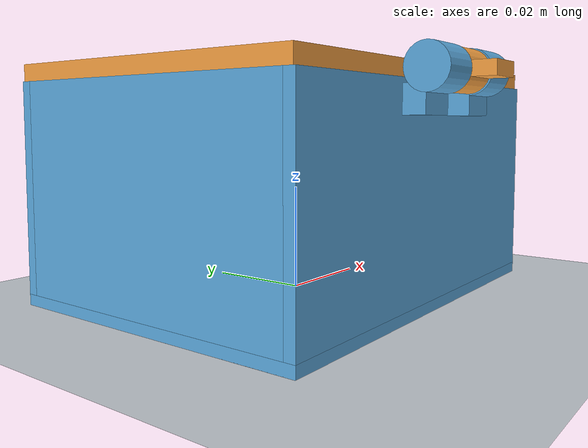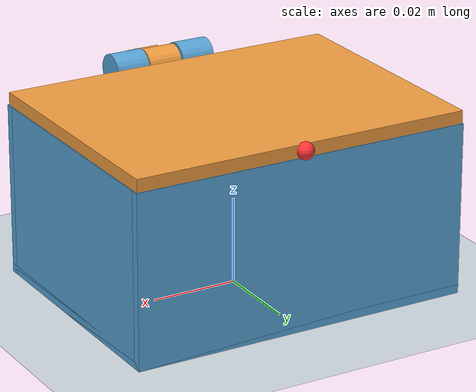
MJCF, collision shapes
<?xml version="1.0" ?>
<mujoco model="m0_hinge_box_V-A">
  <compiler angle="radian" meshdir="meshes" autolimits="true"/>
  <option timestep="0.0005" integrator="implicitfast" cone="elliptic" impratio="10"/>
  <visual>
    <headlight ambient="0.5 0.5 0.5" diffuse="0.6 0.6 0.6" specular="0.2 0.2 0.2"/>
    <global offwidth="1280" offheight="960" azimuth="140" elevation="-20"/>
    <rgba haze="0.9 0.93 0.96 1"/>
  </visual>
  <default>
    <geom solref="0.001 1.0" solimp="0.99 0.9999 0.0001" friction="0.3 0.005 0.0001" condim="4" density="0"/>
  </default>
  <asset>
    <texture name="grid" type="2d" builtin="checker" rgb1=".15 .17 .2" rgb2=".22 .24 .28" width="300" height="300"/>
    <material name="grid" texture="grid" texrepeat="6 6" reflectance=".1"/>
    <material name="petg" rgba="0.35 0.65 0.85 1"/>
    <material name="petg_lid" rgba="0.95 0.62 0.25 1"/>
    <material name="steel" rgba="0.8 0.8 0.85 1"/>
    <mesh name="box_shell_vis" file="box_shell_visual.stl"/>
    <mesh name="lid_panel_vis" file="lid_panel_visual.stl"/>
    <mesh name="hinge_pin_vis" file="hinge_pin_visual.stl"/>
  </asset>
  <worldbody>
    <light pos="0.15 -0.25 0.4" dir="-0.3 0.5 -1" directional="true" diffuse="0.5 0.5 0.5"/>
    <light pos="-0.2 0.2 0.3" dir="0.4 -0.4 -1" directional="true" diffuse="0.25 0.25 0.25"/>
    <geom name="floor" type="plane" size="1 1 .05" rgba="0.82 0.85 0.88 1" pos="0 0 0"/>
    <camera name="iso" pos="0.125 -0.125 0.115" xyaxes="0.707 0.707 0 -0.38 0.38 0.84"/>
    <camera name="hinge_closeup" pos="0.065 -0.105 0.085" xyaxes="0.85 0.53 0 -0.32 0.51 0.80"/>
    <body name="box_shell" pos="0 0 0">
      <inertial pos="-0.000000000 -0.000895754 0.015333721" mass="0.039507716" fullinertia="0.000027786203 0.000038421717 0.000051891681 0.000000000000 -0.000000000000 0.000000868629"/>
      <geom name="box_shell_vis" type="mesh" mesh="box_shell_vis" contype="0" conaffinity="0" group="2" material="petg"/>
      <geom name="box_shell_c0" type="box" pos="0.000000000 0.000000000 0.001000000" size="0.040000000 0.030000000 0.001000000" group="3" material="petg"/>
      <geom name="box_shell_c1" type="box" pos="0.000000000 -0.029000000 0.020000000" size="0.040000000 0.001000000 0.020000000" group="3" material="petg"/>
      <geom name="box_shell_c2" type="box" pos="0.000000000 0.029000000 0.020000000" size="0.040000000 0.001000000 0.020000000" group="3" material="petg"/>
      <geom name="box_shell_c3" type="box" pos="-0.039000000 0.000000000 0.020000000" size="0.001000000 0.028000000 0.020000000" group="3" material="petg"/>
      <geom name="box_shell_c4" type="box" pos="0.039000000 0.000000000 0.020000000" size="0.001000000 0.028000000 0.020000000" group="3" material="petg"/>
      <geom name="box_shell_c5" type="cylinder" pos="-0.008300000 -0.034000000 0.041500000" size="0.004000000 0.004000000" group="3" material="petg" euler="0.000000000 1.570796327 0.000000000"/>
      <geom name="box_shell_c6" type="box" pos="-0.008300000 -0.031000000 0.036550000" size="0.004000000 0.003000000 0.002500000" group="3" material="petg"/>
      <geom name="box_shell_c7" type="cylinder" pos="0.008300000 -0.034000000 0.041500000" size="0.004000000 0.004000000" group="3" material="petg" euler="0.000000000 1.570796327 0.000000000"/>
      <geom name="box_shell_c8" type="box" pos="0.008300000 -0.031000000 0.036550000" size="0.004000000 0.003000000 0.002500000" group="3" material="petg"/>
      <site name="box_axis" pos="0.000000000 -0.034000000 0.041500000" size="0.0012" rgba="0.1 0.9 0.2 1"/>
    </body>
    <body name="lid_panel" pos="0 0 0">
      <joint name="hinge" type="hinge" axis="1 0 0" pos="0.000000000 -0.034000000 0.041500000" damping="0.002" range="-0.02 1.745" limited="true"/>
      <inertial pos="0.000000000 -0.000431079 0.041509611" mass="0.018454377" fullinertia="0.000005845828 0.000009579734 0.000015394728 0.000000000000 0.000000000000 0.000000005020"/>
      <geom name="lid_panel_vis" type="mesh" mesh="lid_panel_vis" contype="0" conaffinity="0" group="2" material="petg_lid"/>
      <geom name="lid_panel_c0" type="box" pos="0.000000000 0.000150000 0.041500000" size="0.039800000 0.029650000 0.001500000" group="3" material="petg_lid"/>
      <geom name="lid_panel_c1" type="box" pos="0.000000000 -0.039500000 0.041500000" size="0.003800000 0.002300000 0.001300000" group="3" material="petg_lid"/>
      <geom name="lid_panel_c2" type="cylinder" pos="0.000000000 -0.034000000 0.041500000" size="0.003800000 0.004000000" group="3" material="petg_lid" euler="0.000000000 1.570796327 0.000000000"/>
      <site name="lid_tip" pos="0.000000000 0.030000000 0.041500000" size="0.002" rgba="1 0.2 0.2 1"/>
    </body>
    <body name="hinge_pin" pos="0 0 0">
      <inertial pos="0.000000000 -0.034000000 0.041500000" mass="0.000487545" fullinertia="0.000000000973 0.000000038530 0.000000038530 -0.000000000000 0.000000000000 -0.000000000000"/>
      <geom name="hinge_pin_vis" type="mesh" mesh="hinge_pin_vis" contype="0" conaffinity="0" group="2" material="steel"/>
      <site name="pin_center" pos="0.000000000 -0.034000000 0.041500000" size="0.0012" rgba="0.9 0.1 0.9 1"/>
    </body>
  </worldbody>
</mujoco>
